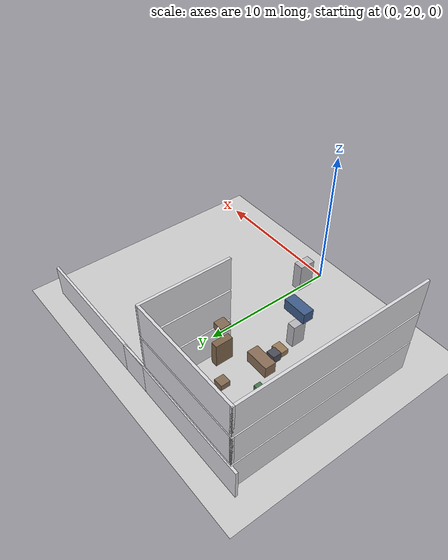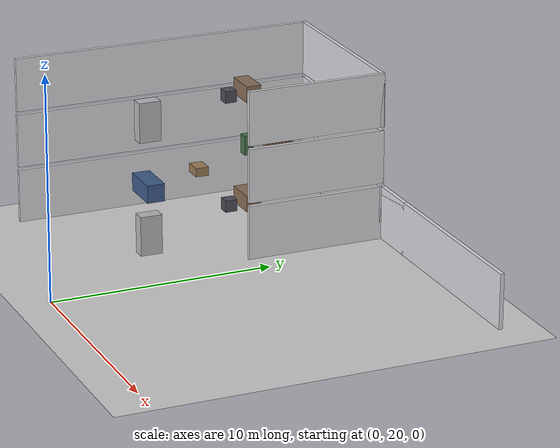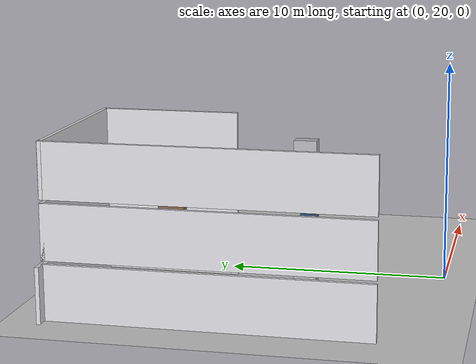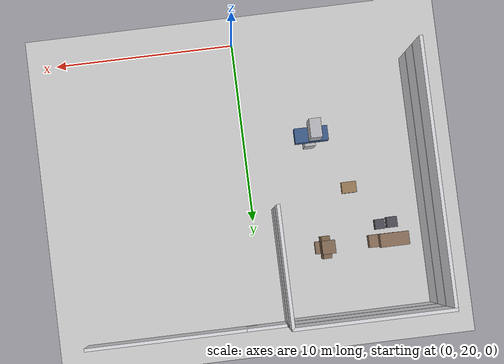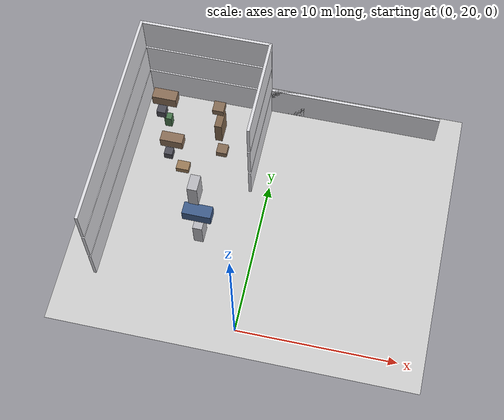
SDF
<sdf version="1.7">
 <world name="generated_world">
  <include><uri>model://sun</uri></include>
  <include><uri>model://ground_plane</uri></include>
  <model name="generated_building">
   <static>true</static>
   <link name="exterior_north_floor_0">
    <pose>0.0000 35.9100 1.2250 0.0000 0.0000 0.0000</pose>
    <collision name="exterior_north_floor_0_collision">
     <geometry><box><size>20.0000 0.1800 2.4500</size></box></geometry>
    </collision>
    <visual name="exterior_north_floor_0_visual">
     <geometry><box><size>20.0000 0.1800 2.4500</size></box></geometry>
     <material><ambient>0.86 0.86 0.88 1</ambient><diffuse>0.86 0.86 0.88 1</diffuse></material>
    </visual>
    <gravity>false</gravity>
   </link>
   <link name="north_end_wall_floor_0">
    <pose>0.0000 35.9100 1.2250 0.0000 0.0000 0.0000</pose>
    <collision name="north_end_wall_floor_0_collision">
     <geometry><box><size>2.2000 0.1800 2.4500</size></box></geometry>
    </collision>
    <visual name="north_end_wall_floor_0_visual">
     <geometry><box><size>2.2000 0.1800 2.4500</size></box></geometry>
     <material><ambient>0.86 0.86 0.88 1</ambient><diffuse>0.86 0.86 0.88 1</diffuse></material>
    </visual>
    <gravity>false</gravity>
   </link>
   <link name="floor_0_room_2_corridor_wall_upper">
    <pose>-1.1900 32.7025 1.2250 0.0000 0.0000 0.0000</pose>
    <collision name="floor_0_room_2_corridor_wall_upper_collision">
     <geometry><box><size>0.1800 6.4150 2.4500</size></box></geometry>
    </collision>
    <visual name="floor_0_room_2_corridor_wall_upper_visual">
     <geometry><box><size>0.1800 6.4150 2.4500</size></box></geometry>
     <material><ambient>0.86 0.86 0.88 1</ambient><diffuse>0.86 0.86 0.88 1</diffuse></material>
    </visual>
    <gravity>false</gravity>
   </link>
   <link name="floor_0_room_2_west_wall">
    <pose>-9.4100 28.8950 1.2250 0.0000 0.0000 0.0000</pose>
    <collision name="floor_0_room_2_west_wall_collision">
     <geometry><box><size>0.1800 14.0300 2.4500</size></box></geometry>
    </collision>
    <visual name="floor_0_room_2_west_wall_visual">
     <geometry><box><size>0.1800 14.0300 2.4500</size></box></geometry>
     <material><ambient>0.86 0.86 0.88 1</ambient><diffuse>0.86 0.86 0.88 1</diffuse></material>
    </visual>
    <gravity>false</gravity>
   </link>
   <link name="floor_0_room_2_north_wall">
    <pose>-5.3000 35.8200 1.2250 0.0000 0.0000 0.0000</pose>
    <collision name="floor_0_room_2_north_wall_collision">
     <geometry><box><size>8.4000 0.1800 2.4500</size></box></geometry>
    </collision>
    <visual name="floor_0_room_2_north_wall_visual">
     <geometry><box><size>8.4000 0.1800 2.4500</size></box></geometry>
     <material><ambient>0.86 0.86 0.88 1</ambient><diffuse>0.86 0.86 0.88 1</diffuse></material>
    </visual>
    <gravity>false</gravity>
   </link>
   <link name="floor_0_room_2_desk">
    <pose>-7.0000 31.9525 0.4500 0.0000 0.0000 0.0000</pose>
    <collision name="floor_0_room_2_desk_collision">
     <geometry><box><size>1.5000 0.7000 0.7500</size></box></geometry>
    </collision>
    <visual name="floor_0_room_2_desk_visual">
     <geometry><box><size>1.5000 0.7000 0.7500</size></box></geometry>
     <material><ambient>0.54 0.43 0.34 1</ambient><diffuse>0.54 0.43 0.34 1</diffuse></material>
    </visual>
    <gravity>false</gravity>
   </link>
   <link name="floor_0_room_2_chair">
    <pose>-7.0000 31.0525 0.2800 0.0000 0.0000 0.0000</pose>
    <collision name="floor_0_room_2_chair_collision">
     <geometry><box><size>0.5500 0.5500 0.5500</size></box></geometry>
    </collision>
    <visual name="floor_0_room_2_chair_visual">
     <geometry><box><size>0.5500 0.5500 0.5500</size></box></geometry>
     <material><ambient>0.30 0.30 0.34 1</ambient><diffuse>0.30 0.30 0.34 1</diffuse></material>
    </visual>
    <gravity>false</gravity>
   </link>
   <link name="floor_0_room_2_cabinet">
    <pose>-3.6000 25.8375 0.9000 0.0000 0.0000 0.0000</pose>
    <collision name="floor_0_room_2_cabinet_collision">
     <geometry><box><size>0.6000 1.0000 1.8000</size></box></geometry>
    </collision>
    <visual name="floor_0_room_2_cabinet_visual">
     <geometry><box><size>0.6000 1.0000 1.8000</size></box></geometry>
     <material><ambient>0.72 0.72 0.74 1</ambient><diffuse>0.72 0.72 0.74 1</diffuse></material>
    </visual>
    <gravity>false</gravity>
   </link>
   <link name="floor_0_room_2_side_table">
    <pose>-3.6000 31.9525 0.3200 0.0000 0.0000 0.0000</pose>
    <collision name="floor_0_room_2_side_table_collision">
     <geometry><box><size>0.7000 0.7000 0.4500</size></box></geometry>
    </collision>
    <visual name="floor_0_room_2_side_table_visual">
     <geometry><box><size>0.7000 0.7000 0.4500</size></box></geometry>
     <material><ambient>0.52 0.42 0.33 1</ambient><diffuse>0.52 0.42 0.33 1</diffuse></material>
    </visual>
    <gravity>false</gravity>
   </link>
   <link name="floor_1_room_2_corridor_wall_upper">
    <pose>-1.1900 32.7025 3.8250 0.0000 0.0000 0.0000</pose>
    <collision name="floor_1_room_2_corridor_wall_upper_collision">
     <geometry><box><size>0.1800 6.4150 2.4500</size></box></geometry>
    </collision>
    <visual name="floor_1_room_2_corridor_wall_upper_visual">
     <geometry><box><size>0.1800 6.4150 2.4500</size></box></geometry>
     <material><ambient>0.86 0.86 0.88 1</ambient><diffuse>0.86 0.86 0.88 1</diffuse></material>
    </visual>
    <gravity>false</gravity>
   </link>
   <link name="floor_1_room_2_west_wall">
    <pose>-9.4100 28.8950 3.8250 0.0000 0.0000 0.0000</pose>
    <collision name="floor_1_room_2_west_wall_collision">
     <geometry><box><size>0.1800 14.0300 2.4500</size></box></geometry>
    </collision>
    <visual name="floor_1_room_2_west_wall_visual">
     <geometry><box><size>0.1800 14.0300 2.4500</size></box></geometry>
     <material><ambient>0.86 0.86 0.88 1</ambient><diffuse>0.86 0.86 0.88 1</diffuse></material>
    </visual>
    <gravity>false</gravity>
   </link>
   <link name="floor_1_room_2_north_wall">
    <pose>-5.3000 35.8200 3.8250 0.0000 0.0000 0.0000</pose>
    <collision name="floor_1_room_2_north_wall_collision">
     <geometry><box><size>8.4000 0.1800 2.4500</size></box></geometry>
    </collision>
    <visual name="floor_1_room_2_north_wall_visual">
     <geometry><box><size>8.4000 0.1800 2.4500</size></box></geometry>
     <material><ambient>0.86 0.86 0.88 1</ambient><diffuse>0.86 0.86 0.88 1</diffuse></material>
    </visual>
    <gravity>false</gravity>
   </link>
   <link name="floor_1_room_2_sofa_b">
    <pose>-3.6000 25.8375 3.0500 0.0000 0.0000 3.1400</pose>
    <collision name="floor_1_room_2_sofa_b_collision">
     <geometry><box><size>1.8000 0.8000 0.8000</size></box></geometry>
    </collision>
    <visual name="floor_1_room_2_sofa_b_visual">
     <geometry><box><size>1.8000 0.8000 0.8000</size></box></geometry>
     <material><ambient>0.24 0.36 0.54 1</ambient><diffuse>0.24 0.36 0.54 1</diffuse></material>
    </visual>
    <gravity>false</gravity>
   </link>
   <link name="floor_1_room_2_coffee_table">
    <pose>-5.3000 28.8950 2.8500 0.0000 0.0000 0.0000</pose>
    <collision name="floor_1_room_2_coffee_table_collision">
     <geometry><box><size>0.8000 0.6000 0.4000</size></box></geometry>
    </collision>
    <visual name="floor_1_room_2_coffee_table_visual">
     <geometry><box><size>0.8000 0.6000 0.4000</size></box></geometry>
     <material><ambient>0.60 0.48 0.34 1</ambient><diffuse>0.60 0.48 0.34 1</diffuse></material>
    </visual>
    <gravity>false</gravity>
   </link>
   <link name="floor_1_room_2_bookshelf">
    <pose>-3.6000 31.9525 3.4500 0.0000 0.0000 0.0000</pose>
    <collision name="floor_1_room_2_bookshelf_collision">
     <geometry><box><size>0.4500 1.2000 1.7000</size></box></geometry>
    </collision>
    <visual name="floor_1_room_2_bookshelf_visual">
     <geometry><box><size>0.4500 1.2000 1.7000</size></box></geometry>
     <material><ambient>0.50 0.40 0.30 1</ambient><diffuse>0.50 0.40 0.30 1</diffuse></material>
    </visual>
    <gravity>false</gravity>
   </link>
   <link name="floor_1_room_2_planter">
    <pose>-7.0000 31.9525 3.0500 0.0000 0.0000 0.0000</pose>
    <collision name="floor_1_room_2_planter_collision">
     <geometry><box><size>0.4500 0.4500 0.9000</size></box></geometry>
    </collision>
    <visual name="floor_1_room_2_planter_visual">
     <geometry><box><size>0.4500 0.4500 0.9000</size></box></geometry>
     <material><ambient>0.28 0.46 0.30 1</ambient><diffuse>0.28 0.46 0.30 1</diffuse></material>
    </visual>
    <gravity>false</gravity>
   </link>
   <link name="floor_2_room_2_corridor_wall_upper">
    <pose>-1.1900 32.7025 6.4250 0.0000 0.0000 0.0000</pose>
    <collision name="floor_2_room_2_corridor_wall_upper_collision">
     <geometry><box><size>0.1800 6.4150 2.4500</size></box></geometry>
    </collision>
    <visual name="floor_2_room_2_corridor_wall_upper_visual">
     <geometry><box><size>0.1800 6.4150 2.4500</size></box></geometry>
     <material><ambient>0.86 0.86 0.88 1</ambient><diffuse>0.86 0.86 0.88 1</diffuse></material>
    </visual>
    <gravity>false</gravity>
   </link>
   <link name="floor_2_room_2_west_wall">
    <pose>-9.4100 28.8950 6.4250 0.0000 0.0000 0.0000</pose>
    <collision name="floor_2_room_2_west_wall_collision">
     <geometry><box><size>0.1800 14.0300 2.4500</size></box></geometry>
    </collision>
    <visual name="floor_2_room_2_west_wall_visual">
     <geometry><box><size>0.1800 14.0300 2.4500</size></box></geometry>
     <material><ambient>0.86 0.86 0.88 1</ambient><diffuse>0.86 0.86 0.88 1</diffuse></material>
    </visual>
    <gravity>false</gravity>
   </link>
   <link name="floor_2_room_2_north_wall">
    <pose>-5.3000 35.8200 6.4250 0.0000 0.0000 0.0000</pose>
    <collision name="floor_2_room_2_north_wall_collision">
     <geometry><box><size>8.4000 0.1800 2.4500</size></box></geometry>
    </collision>
    <visual name="floor_2_room_2_north_wall_visual">
     <geometry><box><size>8.4000 0.1800 2.4500</size></box></geometry>
     <material><ambient>0.86 0.86 0.88 1</ambient><diffuse>0.86 0.86 0.88 1</diffuse></material>
    </visual>
    <gravity>false</gravity>
   </link>
   <link name="floor_2_room_2_desk">
    <pose>-7.0000 31.9525 5.6500 0.0000 0.0000 0.0000</pose>
    <collision name="floor_2_room_2_desk_collision">
     <geometry><box><size>1.5000 0.7000 0.7500</size></box></geometry>
    </collision>
    <visual name="floor_2_room_2_desk_visual">
     <geometry><box><size>1.5000 0.7000 0.7500</size></box></geometry>
     <material><ambient>0.54 0.43 0.34 1</ambient><diffuse>0.54 0.43 0.34 1</diffuse></material>
    </visual>
    <gravity>false</gravity>
   </link>
   <link name="floor_2_room_2_chair">
    <pose>-7.0000 31.0525 5.4800 0.0000 0.0000 0.0000</pose>
    <collision name="floor_2_room_2_chair_collision">
     <geometry><box><size>0.5500 0.5500 0.5500</size></box></geometry>
    </collision>
    <visual name="floor_2_room_2_chair_visual">
     <geometry><box><size>0.5500 0.5500 0.5500</size></box></geometry>
     <material><ambient>0.30 0.30 0.34 1</ambient><diffuse>0.30 0.30 0.34 1</diffuse></material>
    </visual>
    <gravity>false</gravity>
   </link>
   <link name="floor_2_room_2_cabinet">
    <pose>-3.6000 25.8375 6.1000 0.0000 0.0000 0.0000</pose>
    <collision name="floor_2_room_2_cabinet_collision">
     <geometry><box><size>0.6000 1.0000 1.8000</size></box></geometry>
    </collision>
    <visual name="floor_2_room_2_cabinet_visual">
     <geometry><box><size>0.6000 1.0000 1.8000</size></box></geometry>
     <material><ambient>0.72 0.72 0.74 1</ambient><diffuse>0.72 0.72 0.74 1</diffuse></material>
    </visual>
    <gravity>false</gravity>
   </link>
   <link name="floor_2_room_2_side_table">
    <pose>-3.6000 31.9525 5.5200 0.0000 0.0000 0.0000</pose>
    <collision name="floor_2_room_2_side_table_collision">
     <geometry><box><size>0.7000 0.7000 0.4500</size></box></geometry>
    </collision>
    <visual name="floor_2_room_2_side_table_visual">
     <geometry><box><size>0.7000 0.7000 0.4500</size></box></geometry>
     <material><ambient>0.52 0.42 0.33 1</ambient><diffuse>0.52 0.42 0.33 1</diffuse></material>
    </visual>
    <gravity>false</gravity>
   </link>
  </model>
 </world>
</sdf>
